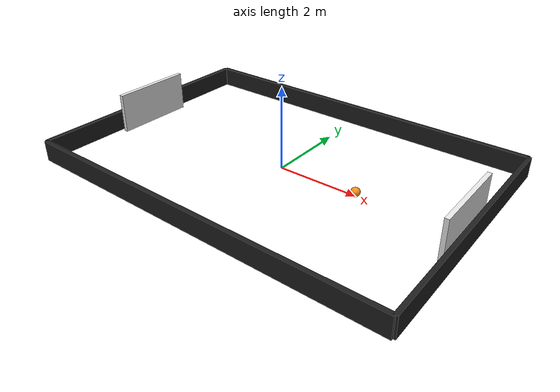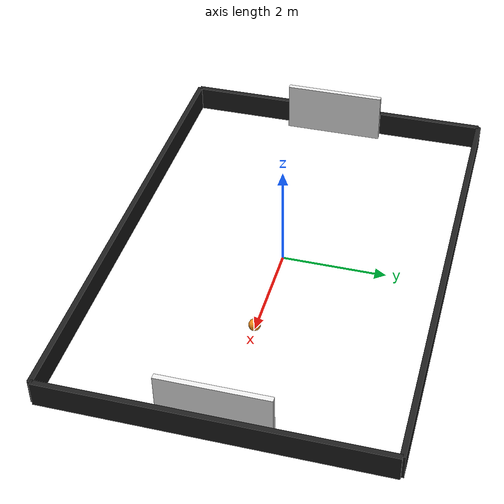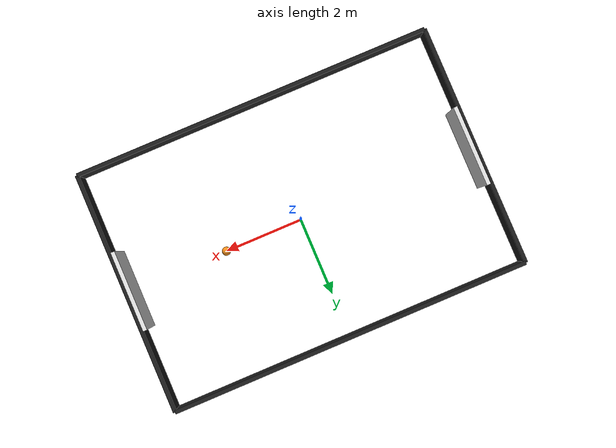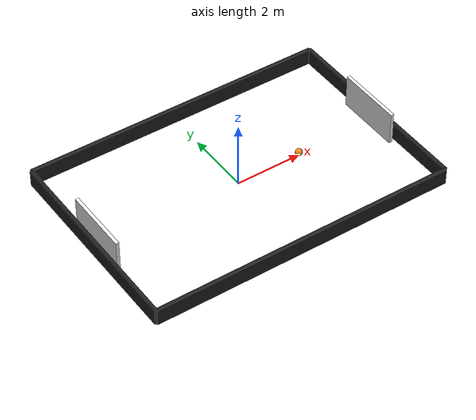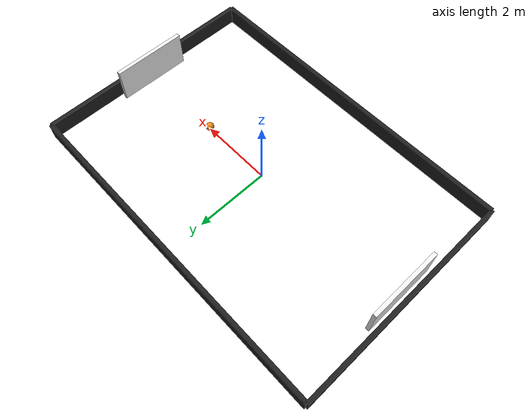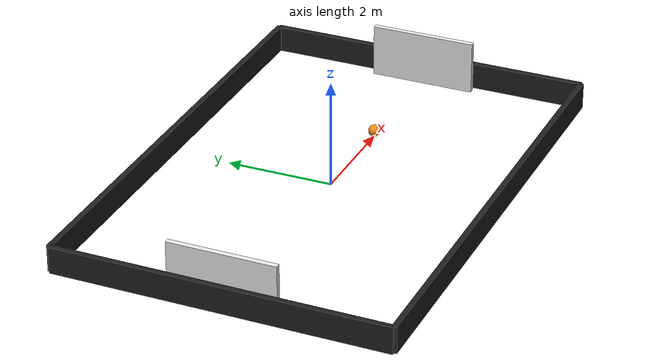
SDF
<sdf version="1.6">
 <world name="soccer_field">
  <include><uri>model://sun</uri></include>
  <model name="soccer_ball">
   <pose>2 0 0.11 0 0 0</pose>
   <link name="ball">
    <inertial>
     <mass>0.05</mass>
     <inertia ixx="0.0001" ixy="0" ixz="0" iyy="0.0001" iyz="0" izz="0.0001"/>
    </inertial>
    <collision name="ball_collision">
     <geometry><sphere><radius>0.11</radius></sphere></geometry>
     <surface>
      <friction><ode><mu>0.05</mu><mu2>0.05</mu2></ode></friction>
      <bounce><restitution_coefficient>0.8</restitution_coefficient><threshold>0.1</threshold></bounce>
     </surface>
    </collision>
    <visual name="ball_visual">
     <geometry><sphere><radius>0.11</radius></sphere></geometry>
     <material>
      <script><uri>file://media/materials/scripts/gazebo.material</uri><name>Gazebo/Orange</name></script>
     </material>
    </visual>
   </link>
  </model>
  <model name="goal_right_long">
   <static>true</static>
   <pose>4.4 0 0.5 0 0 1.5708</pose>
   <link name="frame">
    <visual name="goal_right_visual">
     <geometry><box><size>2.0 0.1 1.0</size></box></geometry>
     <material>
      <script><uri>file://media/materials/scripts/gazebo.material</uri><name>Gazebo/White</name></script>
     </material>
    </visual>
    <collision name="goal_right_collision"><geometry><box><size>2.0 0.1 1.0</size></box></geometry></collision>
   </link>
  </model>
  <model name="goal_left_long">
   <static>true</static>
   <pose>-4.4 0 0.5 0 0 -1.5708</pose>
   <link name="frame">
    <visual name="goal_left_visual">
     <geometry><box><size>2.0 0.1 1.0</size></box></geometry>
     <material>
      <script><uri>file://media/materials/scripts/gazebo.material</uri><name>Gazebo/White</name></script>
     </material>
    </visual>
    <collision name="goal_left_collision"><geometry><box><size>2.0 0.1 1.0</size></box></geometry></collision>
   </link>
  </model>
  <model name="wall_top">
   <static>true</static>
   <pose>0 3.1 0.25 0 0 0</pose>
   <link name="wall">
    <visual name="wall_top_visual">
     <geometry><box><size>9.2 0.1 0.5</size></box></geometry>
     <material>
      <script><uri>file://media/materials/scripts/gazebo.material</uri><name>Gazebo/Black</name></script>
     </material>
    </visual>
    <collision name="wall_top_collision"><geometry><box><size>9.2 0.1 0.5</size></box></geometry></collision>
   </link>
  </model>
  <model name="wall_bottom">
   <static>true</static>
   <pose>0 -3.1 0.25 0 0 0</pose>
   <link name="wall">
    <visual name="wall_bottom_visual">
     <geometry><box><size>9.2 0.1 0.5</size></box></geometry>
     <material>
      <script><uri>file://media/materials/scripts/gazebo.material</uri><name>Gazebo/Black</name></script>
     </material>
    </visual>
    <collision name="wall_bottom_collision"><geometry><box><size>9.2 0.1 0.5</size></box></geometry></collision>
   </link>
  </model>
  <model name="wall_right">
   <static>true</static>
   <pose>4.6 0 0.25 0 0 0</pose>
   <link name="wall">
    <visual name="wall_right_visual">
     <geometry><box><size>0.1 6.2 0.5</size></box></geometry>
     <material>
      <script><uri>file://media/materials/scripts/gazebo.material</uri><name>Gazebo/Black</name></script>
     </material>
    </visual>
    <collision name="wall_right_collision"><geometry><box><size>0.1 6.2 0.5</size></box></geometry></collision>
   </link>
  </model>
  <model name="wall_left">
   <static>true</static>
   <pose>-4.6 0 0.25 0 0 0</pose>
   <link name="wall">
    <visual name="wall_left_visual">
     <geometry><box><size>0.1 6.2 0.5</size></box></geometry>
     <material>
      <script><uri>file://media/materials/scripts/gazebo.material</uri><name>Gazebo/Black</name></script>
     </material>
    </visual>
    <collision name="wall_left_collision"><geometry><box><size>0.1 6.2 0.5</size></box></geometry></collision>
   </link>
  </model>
 </world>
</sdf>
